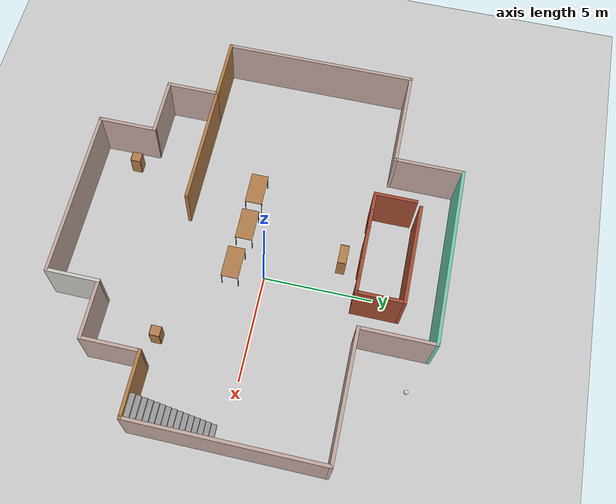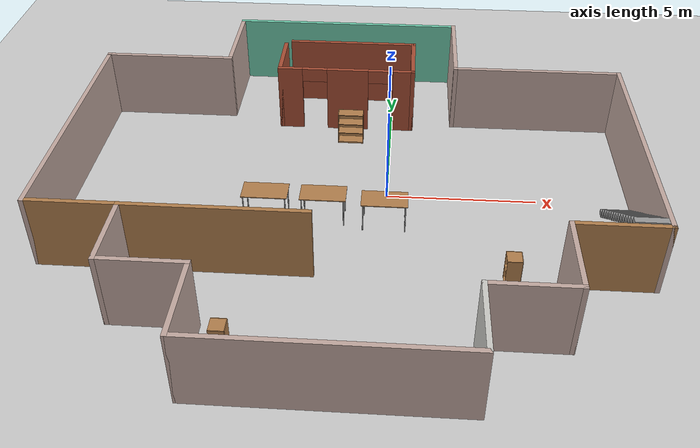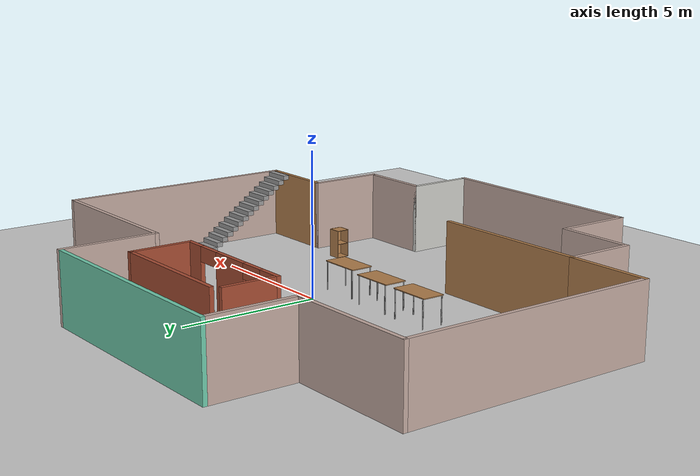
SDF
<sdf version="1.6">
 <world name="default">
  <light name="sun" type="directional">
   <pose>0 0 10 0 -0 0</pose>
   <diffuse>0.8 0.8 0.8 1</diffuse>
   <specular>0.2 0.2 0.2 1</specular>
   <attenuation>
    <range>1000</range>
    <constant>0.9</constant>
    <linear>0.01</linear>
    <quadratic>0.001</quadratic>
   </attenuation>
   <direction>-0.5 0.1 -0.9</direction>
  </light>
  <model name="ground_plane">
   <static>1</static>
   <link name="link">
    <collision name="collision">
     <geometry><plane><normal>0 0 1</normal><size>100 100</size></plane></geometry>
     <surface>
      <contact><collide_bitmask>65535</collide_bitmask></contact>
      <friction><ode><mu>100</mu><mu2>50</mu2></ode></friction>
     </surface>
    </collision>
    <visual name="visual">
     <cast_shadows>0</cast_shadows>
     <geometry><plane><normal>0 0 1</normal><size>100 100</size></plane></geometry>
     <material>
      <script><uri>file://media/materials/scripts/gazebo.material</uri><name>Gazebo/Grey</name></script>
     </material>
    </visual>
   </link>
  </model>
  <gravity>0 0 -9.8</gravity>
  <magnetic_field>6e-06 2.3e-05 -4.2e-05</magnetic_field>
  <atmosphere type="adiabatic"/>
  <physics name="default_physics" default="0" type="ode">
   <max_step_size>0.001</max_step_size>
   <real_time_factor>1</real_time_factor>
   <real_time_update_rate>1000</real_time_update_rate>
  </physics>
  <scene><ambient>0.4 0.4 0.4 1</ambient><background>0.7 0.7 0.7 1</background><shadows>1</shadows></scene>
  <spherical_coordinates>
   <surface_model>EARTH_WGS84</surface_model>
   <latitude_deg>0</latitude_deg>
   <longitude_deg>0</longitude_deg>
   <elevation>0</elevation>
   <heading_deg>0</heading_deg>
  </spherical_coordinates>
  <model name="aakash.world">
   <pose>-1.23426 -0.557609 0 0 -0 0</pose>
   <link name="Stairs_0">
    <visual name="Stairs_0_Visual_0">
     <pose>8.79859 0.013692 0.083333 0 -0 0</pose>
     <geometry><box><size>1 0.233333 0.166667</size></box></geometry>
     <material>
      <script><uri>file://media/materials/scripts/gazebo.material</uri><name>Gazebo/Grey</name></script>
      <ambient>1 1 1 1</ambient>
     </material>
     <meta><layer>0</layer></meta>
    </visual>
    <collision name="Stairs_0_Collision_0">
     <geometry><box><size>1 0.233333 0.166667</size></box></geometry>
     <pose>8.79859 0.013692 0.083333 0 -0 0</pose>
    </collision>
    <visual name="Stairs_0_Visual_1">
     <pose>8.79859 -0.219641 0.25 0 -0 0</pose>
     <geometry><box><size>1 0.233333 0.166667</size></box></geometry>
     <material>
      <script><uri>file://media/materials/scripts/gazebo.material</uri><name>Gazebo/Grey</name></script>
      <ambient>1 1 1 1</ambient>
     </material>
     <meta><layer>0</layer></meta>
    </visual>
    <collision name="Stairs_0_Collision_1">
     <geometry><box><size>1 0.233333 0.166667</size></box></geometry>
     <pose>8.79859 -0.219641 0.25 0 -0 0</pose>
    </collision>
    <visual name="Stairs_0_Visual_2">
     <pose>8.79859 -0.452974 0.416667 0 -0 0</pose>
     <geometry><box><size>1 0.233333 0.166667</size></box></geometry>
     <material>
      <script><uri>file://media/materials/scripts/gazebo.material</uri><name>Gazebo/Grey</name></script>
      <ambient>1 1 1 1</ambient>
     </material>
     <meta><layer>0</layer></meta>
    </visual>
    <collision name="Stairs_0_Collision_2">
     <geometry><box><size>1 0.233333 0.166667</size></box></geometry>
     <pose>8.79859 -0.452974 0.416667 0 -0 0</pose>
    </collision>
    <visual name="Stairs_0_Visual_3">
     <pose>8.79859 -0.686308 0.583333 0 -0 0</pose>
     <geometry><box><size>1 0.233333 0.166667</size></box></geometry>
     <material>
      <script><uri>file://media/materials/scripts/gazebo.material</uri><name>Gazebo/Grey</name></script>
      <ambient>1 1 1 1</ambient>
     </material>
     <meta><layer>0</layer></meta>
    </visual>
    <collision name="Stairs_0_Collision_3">
     <geometry><box><size>1 0.233333 0.166667</size></box></geometry>
     <pose>8.79859 -0.686308 0.583333 0 -0 0</pose>
    </collision>
    <visual name="Stairs_0_Visual_4">
     <pose>8.79859 -0.919641 0.75 0 -0 0</pose>
     <geometry><box><size>1 0.233333 0.166667</size></box></geometry>
     <material>
      <script><uri>file://media/materials/scripts/gazebo.material</uri><name>Gazebo/Grey</name></script>
      <ambient>1 1 1 1</ambient>
     </material>
     <meta><layer>0</layer></meta>
    </visual>
    <collision name="Stairs_0_Collision_4">
     <geometry><box><size>1 0.233333 0.166667</size></box></geometry>
     <pose>8.79859 -0.919641 0.75 0 -0 0</pose>
    </collision>
    <visual name="Stairs_0_Visual_5">
     <pose>8.79859 -1.15297 0.916667 0 -0 0</pose>
     <geometry><box><size>1 0.233333 0.166667</size></box></geometry>
     <material>
      <script><uri>file://media/materials/scripts/gazebo.material</uri><name>Gazebo/Grey</name></script>
      <ambient>1 1 1 1</ambient>
     </material>
     <meta><layer>0</layer></meta>
    </visual>
    <collision name="Stairs_0_Collision_5">
     <geometry><box><size>1 0.233333 0.166667</size></box></geometry>
     <pose>8.79859 -1.15297 0.916667 0 -0 0</pose>
    </collision>
    <visual name="Stairs_0_Visual_6">
     <pose>8.79859 -1.38631 1.08333 0 -0 0</pose>
     <geometry><box><size>1 0.233333 0.166667</size></box></geometry>
     <material>
      <script><uri>file://media/materials/scripts/gazebo.material</uri><name>Gazebo/Grey</name></script>
      <ambient>1 1 1 1</ambient>
     </material>
     <meta><layer>0</layer></meta>
    </visual>
    <collision name="Stairs_0_Collision_6">
     <geometry><box><size>1 0.233333 0.166667</size></box></geometry>
     <pose>8.79859 -1.38631 1.08333 0 -0 0</pose>
    </collision>
    <visual name="Stairs_0_Visual_7">
     <pose>8.79859 -1.61964 1.25 0 -0 0</pose>
     <geometry><box><size>1 0.233333 0.166667</size></box></geometry>
     <material>
      <script><uri>file://media/materials/scripts/gazebo.material</uri><name>Gazebo/Grey</name></script>
      <ambient>1 1 1 1</ambient>
     </material>
     <meta><layer>0</layer></meta>
    </visual>
    <collision name="Stairs_0_Collision_7">
     <geometry><box><size>1 0.233333 0.166667</size></box></geometry>
     <pose>8.79859 -1.61964 1.25 0 -0 0</pose>
    </collision>
    <visual name="Stairs_0_Visual_8">
     <pose>8.79859 -1.85297 1.41667 0 -0 0</pose>
     <geometry><box><size>1 0.233333 0.166667</size></box></geometry>
     <material>
      <script><uri>file://media/materials/scripts/gazebo.material</uri><name>Gazebo/Grey</name></script>
      <ambient>1 1 1 1</ambient>
     </material>
     <meta><layer>0</layer></meta>
    </visual>
    <collision name="Stairs_0_Collision_8">
     <geometry><box><size>1 0.233333 0.166667</size></box></geometry>
     <pose>8.79859 -1.85297 1.41667 0 -0 0</pose>
    </collision>
    <visual name="Stairs_0_Visual_9">
     <pose>8.79859 -2.08631 1.58333 0 -0 0</pose>
     <geometry><box><size>1 0.233333 0.166667</size></box></geometry>
     <material>
      <script><uri>file://media/materials/scripts/gazebo.material</uri><name>Gazebo/Grey</name></script>
      <ambient>1 1 1 1</ambient>
     </material>
     <meta><layer>0</layer></meta>
    </visual>
    <collision name="Stairs_0_Collision_9">
     <geometry><box><size>1 0.233333 0.166667</size></box></geometry>
     <pose>8.79859 -2.08631 1.58333 0 -0 0</pose>
    </collision>
    <visual name="Stairs_0_Visual_10">
     <pose>8.79859 -2.31964 1.75 0 -0 0</pose>
     <geometry><box><size>1 0.233333 0.166667</size></box></geometry>
     <material>
      <script><uri>file://media/materials/scripts/gazebo.material</uri><name>Gazebo/Grey</name></script>
      <ambient>1 1 1 1</ambient>
     </material>
     <meta><layer>0</layer></meta>
    </visual>
    <collision name="Stairs_0_Collision_10">
     <geometry><box><size>1 0.233333 0.166667</size></box></geometry>
     <pose>8.79859 -2.31964 1.75 0 -0 0</pose>
    </collision>
    <visual name="Stairs_0_Visual_11">
     <pose>8.79859 -2.55297 1.91667 0 -0 0</pose>
     <geometry><box><size>1 0.233333 0.166667</size></box></geometry>
     <material>
      <script><uri>file://media/materials/scripts/gazebo.material</uri><name>Gazebo/Grey</name></script>
      <ambient>1 1 1 1</ambient>
     </material>
     <meta><layer>0</layer></meta>
    </visual>
    <collision name="Stairs_0_Collision_11">
     <geometry><box><size>1 0.233333 0.166667</size></box></geometry>
     <pose>8.79859 -2.55297 1.91667 0 -0 0</pose>
    </collision>
    <visual name="Stairs_0_Visual_12">
     <pose>8.79859 -2.78631 2.08333 0 -0 0</pose>
     <geometry><box><size>1 0.233333 0.166667</size></box></geometry>
     <material>
      <script><uri>file://media/materials/scripts/gazebo.material</uri><name>Gazebo/Grey</name></script>
      <ambient>1 1 1 1</ambient>
     </material>
     <meta><layer>0</layer></meta>
    </visual>
    <collision name="Stairs_0_Collision_12">
     <geometry><box><size>1 0.233333 0.166667</size></box></geometry>
     <pose>8.79859 -2.78631 2.08333 0 -0 0</pose>
    </collision>
    <visual name="Stairs_0_Visual_13">
     <pose>8.79859 -3.01964 2.25 0 -0 0</pose>
     <geometry><box><size>1 0.233333 0.166667</size></box></geometry>
     <material>
      <script><uri>file://media/materials/scripts/gazebo.material</uri><name>Gazebo/Grey</name></script>
      <ambient>1 1 1 1</ambient>
     </material>
     <meta><layer>0</layer></meta>
    </visual>
    <collision name="Stairs_0_Collision_13">
     <geometry><box><size>1 0.233333 0.166667</size></box></geometry>
     <pose>8.79859 -3.01964 2.25 0 -0 0</pose>
    </collision>
    <visual name="Stairs_0_Visual_14">
     <pose>8.79859 -3.25298 2.41667 0 -0 0</pose>
     <geometry><box><size>1 0.233333 0.166667</size></box></geometry>
     <material>
      <script><uri>file://media/materials/scripts/gazebo.material</uri><name>Gazebo/Grey</name></script>
      <ambient>1 1 1 1</ambient>
     </material>
     <meta><layer>0</layer></meta>
    </visual>
    <collision name="Stairs_0_Collision_14">
     <geometry><box><size>1 0.233333 0.166667</size></box></geometry>
     <pose>8.79859 -3.25298 2.41667 0 -0 0</pose>
    </collision>
   </link>
   <link name="Wall_0">
    <collision name="Wall_0_Collision">
     <geometry><box><size>9 0.15 2.5</size></box></geometry>
     <pose>0 0 1.25 0 -0 0</pose>
    </collision>
    <visual name="Wall_0_Visual">
     <pose>0 0 1.25 0 -0 0</pose>
     <geometry><box><size>9 0.15 2.5</size></box></geometry>
     <material>
      <script><uri>file://media/materials/scripts/gazebo.material</uri><name>Gazebo/Grey</name></script>
      <ambient>0.760784 0.662745 0.627451 1</ambient>
     </material>
     <meta><layer>0</layer></meta>
    </visual>
    <pose>-9.375 0.925 0 0 0 -1.5708</pose>
   </link>
   <link name="Wall_1">
    <collision name="Wall_1_Collision">
     <geometry><box><size>3 0.15 2.5</size></box></geometry>
     <pose>0 0 1.25 0 -0 0</pose>
    </collision>
    <visual name="Wall_1_Visual">
     <pose>0 0 1.25 0 -0 0</pose>
     <geometry><box><size>3 0.15 2.5</size></box></geometry>
     <material>
      <script><uri>file://media/materials/scripts/gazebo.material</uri><name>Gazebo/Wood</name></script>
      <ambient>1 1 1 1</ambient>
     </material>
     <meta><layer>0</layer></meta>
    </visual>
    <pose>-7.95 -3.5 0 0 -0 0</pose>
   </link>
   <link name="Wall_10">
    <collision name="Wall_10_Collision">
     <geometry><box><size>8.75 0.15 2.5</size></box></geometry>
     <pose>0 0 1.25 0 -0 0</pose>
    </collision>
    <visual name="Wall_10_Visual">
     <pose>0 0 1.25 0 -0 0</pose>
     <geometry><box><size>8.75 0.15 2.5</size></box></geometry>
     <material>
      <script><uri>file://media/materials/scripts/gazebo.material</uri><name>Gazebo/Grey</name></script>
      <ambient>0.760784 0.662745 0.627451 1</ambient>
     </material>
     <meta><layer>0</layer></meta>
    </visual>
    <pose>9.375 0.8 0 0 -0 1.5708</pose>
   </link>
   <link name="Wall_11">
    <collision name="Wall_11_Collision">
     <geometry><box><size>6 0.15 2.5</size></box></geometry>
     <pose>0 0 1.25 0 -0 0</pose>
    </collision>
    <visual name="Wall_11_Visual">
     <pose>0 0 1.25 0 -0 0</pose>
     <geometry><box><size>6 0.15 2.5</size></box></geometry>
     <material>
      <script><uri>file://media/materials/scripts/gazebo.material</uri><name>Gazebo/Grey</name></script>
      <ambient>0.760784 0.662745 0.627451 1</ambient>
     </material>
     <meta><layer>0</layer></meta>
    </visual>
    <pose>6.45 5.1 0 0 -0 3.14159</pose>
   </link>
   <link name="Wall_12">
    <collision name="Wall_12_Collision">
     <geometry><box><size>3.5 0.15 2.5</size></box></geometry>
     <pose>0 0 1.25 0 -0 0</pose>
    </collision>
    <visual name="Wall_12_Visual">
     <pose>0 0 1.25 0 -0 0</pose>
     <geometry><box><size>3.5 0.15 2.5</size></box></geometry>
     <material>
      <script><uri>file://media/materials/scripts/gazebo.material</uri><name>Gazebo/Grey</name></script>
      <ambient>0.760784 0.662745 0.627451 1</ambient>
     </material>
     <meta><layer>0</layer></meta>
    </visual>
    <pose>3.525 6.775 0 0 -0 1.5708</pose>
   </link>
   <link name="Wall_13">
    <collision name="Wall_13_Collision">
     <geometry><box><size>8.5 0.15 2.5</size></box></geometry>
     <pose>0 0 1.25 0 -0 0</pose>
    </collision>
    <visual name="Wall_13_Visual">
     <pose>0 0 1.25 0 -0 0</pose>
     <geometry><box><size>8.5 0.15 2.5</size></box></geometry>
     <material>
      <script><uri>file://media/materials/scripts/gazebo.material</uri><name>Gazebo/Grey</name></script>
      <ambient>0.435294 0.796078 0.67451 1</ambient>
     </material>
     <meta><layer>0</layer></meta>
    </visual>
    <pose>-0.65 8.45 0 0 -0 3.14159</pose>
   </link>
   <link name="Wall_14">
    <collision name="Wall_14_Collision">
     <geometry><box><size>3.25 0.15 2.5</size></box></geometry>
     <pose>0 0 1.25 0 -0 0</pose>
    </collision>
    <visual name="Wall_14_Visual">
     <pose>0 0 1.25 0 -0 0</pose>
     <geometry><box><size>3.25 0.15 2.5</size></box></geometry>
     <material>
      <script><uri>file://media/materials/scripts/gazebo.material</uri><name>Gazebo/Grey</name></script>
      <ambient>0.760784 0.662745 0.627451 1</ambient>
     </material>
     <meta><layer>0</layer></meta>
    </visual>
    <pose>-4.825 6.9 0 0 0 -1.5708</pose>
   </link>
   <link name="Wall_15">
    <collision name="Wall_15_Collision">
     <geometry><box><size>4.7 0.15 2.5</size></box></geometry>
     <pose>0 0 1.25 0 -0 0</pose>
    </collision>
    <visual name="Wall_15_Visual">
     <pose>0 0 1.25 0 -0 0</pose>
     <geometry><box><size>4.7 0.15 2.5</size></box></geometry>
     <material>
      <script><uri>file://media/materials/scripts/gazebo.material</uri><name>Gazebo/Grey</name></script>
      <ambient>0.760784 0.662745 0.627451 1</ambient>
     </material>
     <meta><layer>0</layer></meta>
    </visual>
    <pose>-7.1 5.35 0 0 -0 3.14159</pose>
   </link>
   <link name="Wall_17">
    <collision name="Wall_17_Collision">
     <geometry><box><size>5.75 0.15 2.5</size></box></geometry>
     <pose>0 0 1.25 0 -0 0</pose>
    </collision>
    <visual name="Wall_17_Visual">
     <pose>0 0 1.25 0 -0 0</pose>
     <geometry><box><size>5.75 0.15 2.5</size></box></geometry>
     <material>
      <script><uri>file://media/materials/scripts/gazebo.material</uri><name>Gazebo/Wood</name></script>
      <ambient>1 1 1 1</ambient>
     </material>
     <meta><layer>0</layer></meta>
    </visual>
    <pose>-3.725 -3.5 0 0 -0 0</pose>
   </link>
   <link name="Wall_19">
    <collision name="Wall_19_Collision">
     <geometry><box><size>2 0.15 2.5</size></box></geometry>
     <pose>0 0 1.25 0 -0 0</pose>
    </collision>
    <visual name="Wall_19_Visual">
     <pose>0 0 1.25 0 -0 0</pose>
     <geometry><box><size>2 0.15 2.5</size></box></geometry>
     <material>
      <script><uri>file://media/materials/scripts/gazebo.material</uri><name>Gazebo/Bricks</name></script>
      <ambient>1 1 1 1</ambient>
     </material>
     <meta><layer>0</layer></meta>
    </visual>
    <pose>-2.87632 5.66318 0 0 0 -1.5708</pose>
   </link>
   <link name="Wall_2">
    <collision name="Wall_2_Collision">
     <geometry><box><size>2.5 0.15 2.5</size></box></geometry>
     <pose>0 0 1.25 0 -0 0</pose>
    </collision>
    <visual name="Wall_2_Visual">
     <pose>0 0 1.25 0 -0 0</pose>
     <geometry><box><size>2.5 0.15 2.5</size></box></geometry>
     <material>
      <script><uri>file://media/materials/scripts/gazebo.material</uri><name>Gazebo/Grey</name></script>
      <ambient>0.760784 0.662745 0.627451 1</ambient>
     </material>
     <meta><layer>0</layer></meta>
    </visual>
    <pose>-6.525 -4.675 0 0 0 -1.5708</pose>
   </link>
   <link name="Wall_20">
    <pose>-0.451323 4.73818 0 0 -0 0</pose>
    <visual name="Wall_20_Visual_0">
     <pose>-2.05069 0 1.25 0 -0 0</pose>
     <geometry><box><size>0.898627 0.15 2.5</size></box></geometry>
     <material>
      <script><uri>file://media/materials/scripts/gazebo.material</uri><name>Gazebo/Bricks</name></script>
      <ambient>1 1 1 1</ambient>
     </material>
     <meta><layer>0</layer></meta>
    </visual>
    <collision name="Wall_20_Collision_0">
     <geometry><box><size>0.898627 0.15 2.5</size></box></geometry>
     <pose>-2.05069 0 1.25 0 -0 0</pose>
    </collision>
    <visual name="Wall_20_Visual_1">
     <pose>0.051497 0 1.25 0 -0 0</pose>
     <geometry><box><size>1.50574 0.15 2.5</size></box></geometry>
     <material>
      <script><uri>file://media/materials/scripts/gazebo.material</uri><name>Gazebo/Bricks</name></script>
      <ambient>1 1 1 1</ambient>
     </material>
     <meta><layer>0</layer></meta>
    </visual>
    <collision name="Wall_20_Collision_1">
     <geometry><box><size>1.50574 0.15 2.5</size></box></geometry>
     <pose>0.051497 0 1.25 0 -0 0</pose>
    </collision>
    <visual name="Wall_20_Visual_2">
     <pose>2.10218 0 1.25 0 -0 0</pose>
     <geometry><box><size>0.795633 0.15 2.5</size></box></geometry>
     <material>
      <script><uri>file://media/materials/scripts/gazebo.material</uri><name>Gazebo/Bricks</name></script>
      <ambient>1 1 1 1</ambient>
     </material>
     <meta><layer>0</layer></meta>
    </visual>
    <collision name="Wall_20_Collision_2">
     <geometry><box><size>0.795633 0.15 2.5</size></box></geometry>
     <pose>2.10218 0 1.25 0 -0 0</pose>
    </collision>
    <visual name="Wall_20_Visual_3">
     <pose>-1.15137 0 2.25 0 -0 0</pose>
     <geometry><box><size>0.9 0.15 0.5</size></box></geometry>
     <material>
      <script><uri>file://media/materials/scripts/gazebo.material</uri><name>Gazebo/Bricks</name></script>
      <ambient>1 1 1 1</ambient>
     </material>
     <meta><layer>0</layer></meta>
    </visual>
    <collision name="Wall_20_Collision_3">
     <geometry><box><size>0.9 0.15 0.5</size></box></geometry>
     <pose>-1.15137 0 2.25 0 -0 0</pose>
    </collision>
    <visual name="Wall_20_Visual_4">
     <pose>1.25437 0 2.25 0 -0 0</pose>
     <geometry><box><size>0.9 0.15 0.5</size></box></geometry>
     <material>
      <script><uri>file://media/materials/scripts/gazebo.material</uri><name>Gazebo/Bricks</name></script>
      <ambient>1 1 1 1</ambient>
     </material>
     <meta><layer>0</layer></meta>
    </visual>
    <collision name="Wall_20_Collision_4">
     <geometry><box><size>0.9 0.15 0.5</size></box></geometry>
     <pose>1.25437 0 2.25 0 -0 0</pose>
    </collision>
   </link>
   <link name="Wall_21">
    <collision name="Wall_21_Collision">
     <geometry><box><size>2.25 0.15 2.5</size></box></geometry>
     <pose>0 0 1.25 0 -0 0</pose>
    </collision>
    <visual name="Wall_21_Visual">
     <pose>0 0 1.25 0 -0 0</pose>
     <geometry><box><size>2.25 0.15 2.5</size></box></geometry>
     <material>
      <script><uri>file://media/materials/scripts/gazebo.material</uri><name>Gazebo/Bricks</name></script>
      <ambient>1 1 1 1</ambient>
     </material>
     <meta><layer>0</layer></meta>
    </visual>
    <pose>1.97368 5.78818 0 0 -0 1.5708</pose>
   </link>
   <link name="Wall_22">
    <collision name="Wall_22_Collision">
     <geometry><box><size>4.75 0.15 2.5</size></box></geometry>
     <pose>0 0 1.25 0 -0 0</pose>
    </collision>
    <visual name="Wall_22_Visual">
     <pose>0 0 1.25 0 -0 0</pose>
     <geometry><box><size>4.75 0.15 2.5</size></box></geometry>
     <material>
      <script><uri>file://media/materials/scripts/gazebo.material</uri><name>Gazebo/Bricks</name></script>
      <ambient>1 1 1 1</ambient>
     </material>
     <meta><layer>0</layer></meta>
    </visual>
    <pose>-0.326323 6.83818 0 0 -0 3.14159</pose>
   </link>
   <link name="Wall_3">
    <collision name="Wall_3_Collision">
     <geometry><box><size>2.75 0.15 2.5</size></box></geometry>
     <pose>0 0 1.25 0 -0 0</pose>
    </collision>
    <visual name="Wall_3_Visual">
     <pose>0 0 1.25 0 -0 0</pose>
     <geometry><box><size>2.75 0.15 2.5</size></box></geometry>
     <material>
      <script><uri>file://media/materials/scripts/gazebo.material</uri><name>Gazebo/Grey</name></script>
      <ambient>0.760784 0.662745 0.627451 1</ambient>
     </material>
     <meta><layer>0</layer></meta>
    </visual>
    <pose>-5.225 -5.85 0 0 -0 0</pose>
   </link>
   <link name="Wall_4">
    <collision name="Wall_4_Collision">
     <geometry><box><size>2.75 0.15 2.5</size></box></geometry>
     <pose>0 0 1.25 0 -0 0</pose>
    </collision>
    <visual name="Wall_4_Visual">
     <pose>0 0 1.25 0 -0 0</pose>
     <geometry><box><size>2.75 0.15 2.5</size></box></geometry>
     <material>
      <script><uri>file://media/materials/scripts/gazebo.material</uri><name>Gazebo/Grey</name></script>
      <ambient>0.760784 0.662745 0.627451 1</ambient>
     </material>
     <meta><layer>0</layer></meta>
    </visual>
    <pose>-3.925 -7.15 0 0 0 -1.5708</pose>
   </link>
   <link name="Wall_5">
    <collision name="Wall_5_Collision">
     <geometry><box><size>8 0.15 2.5</size></box></geometry>
     <pose>0 0 1.25 0 -0 0</pose>
    </collision>
    <visual name="Wall_5_Visual">
     <pose>0 0 1.25 0 -0 0</pose>
     <geometry><box><size>8 0.15 2.5</size></box></geometry>
     <material>
      <script><uri>file://media/materials/scripts/gazebo.material</uri><name>Gazebo/Grey</name></script>
      <ambient>0.760784 0.662745 0.627451 1</ambient>
     </material>
     <meta><layer>0</layer></meta>
    </visual>
    <pose>0 -8.45 0 0 -0 0</pose>
   </link>
   <link name="Wall_6">
    <collision name="Wall_6_Collision">
     <geometry><box><size>2.5 0.15 2.5</size></box></geometry>
     <pose>0 0 1.25 0 -0 0</pose>
    </collision>
    <visual name="Wall_6_Visual">
     <pose>0 0 1.25 0 -0 0</pose>
     <geometry><box><size>2.5 0.15 2.5</size></box></geometry>
     <material>
      <script><uri>file://media/materials/scripts/gazebo.material</uri><name>Gazebo/CeilingTiled</name></script>
      <ambient>1 1 1 1</ambient>
     </material>
     <meta><layer>0</layer></meta>
    </visual>
    <pose>3.925 -7.275 0 0 -0 1.5708</pose>
   </link>
   <link name="Wall_7">
    <collision name="Wall_7_Collision">
     <geometry><box><size>2.75 0.15 2.5</size></box></geometry>
     <pose>0 0 1.25 0 -0 0</pose>
    </collision>
    <visual name="Wall_7_Visual">
     <pose>0 0 1.25 0 -0 0</pose>
     <geometry><box><size>2.75 0.15 2.5</size></box></geometry>
     <material>
      <script><uri>file://media/materials/scripts/gazebo.material</uri><name>Gazebo/Grey</name></script>
      <ambient>0.760784 0.662745 0.627451 1</ambient>
     </material>
     <meta><layer>0</layer></meta>
    </visual>
    <pose>5.225 -6.1 0 0 -0 0</pose>
   </link>
   <link name="Wall_8">
    <collision name="Wall_8_Collision">
     <geometry><box><size>2.75 0.15 2.5</size></box></geometry>
     <pose>0 0 1.25 0 -0 0</pose>
    </collision>
    <visual name="Wall_8_Visual">
     <pose>0 0 1.25 0 -0 0</pose>
     <geometry><box><size>2.75 0.15 2.5</size></box></geometry>
     <material>
      <script><uri>file://media/materials/scripts/gazebo.material</uri><name>Gazebo/Grey</name></script>
      <ambient>0.760784 0.662745 0.627451 1</ambient>
     </material>
     <meta><layer>0</layer></meta>
    </visual>
    <pose>6.525 -4.8 0 0 -0 1.5708</pose>
   </link>
   <link name="Wall_9">
    <collision name="Wall_9_Collision">
     <geometry><box><size>3 0.15 2.5</size></box></geometry>
     <pose>0 0 1.25 0 -0 0</pose>
    </collision>
    <visual name="Wall_9_Visual">
     <pose>0 0 1.25 0 -0 0</pose>
     <geometry><box><size>3 0.15 2.5</size></box></geometry>
     <material>
      <script><uri>file://media/materials/scripts/gazebo.material</uri><name>Gazebo/Wood</name></script>
      <ambient>1 1 1 1</ambient>
     </material>
     <meta><layer>0</layer></meta>
    </visual>
    <pose>7.95 -3.5 0 0 -0 0</pose>
   </link>
   <static>1</static>
  </model>
  <model name="table">
   <static>1</static>
   <link name="link">
    <collision name="surface">
     <pose>0 0 1 0 -0 0</pose>
     <geometry><box><size>1.5 0.8 0.03</size></box></geometry>
     <surface><friction><ode><mu>0.6</mu><mu2>0.6</mu2></ode></friction></surface>
    </collision>
    <visual name="visual1">
     <pose>0 0 1 0 -0 0</pose>
     <geometry><box><size>1.5 0.8 0.03</size></box></geometry>
     <material>
      <script><uri>file://media/materials/scripts/gazebo.material</uri><name>Gazebo/Wood</name></script>
     </material>
    </visual>
    <collision name="front_left_leg">
     <pose>0.68 0.38 0.5 0 -0 0</pose>
     <geometry><cylinder><radius>0.02</radius><length>1</length></cylinder></geometry>
    </collision>
    <visual name="front_left_leg">
     <pose>0.68 0.38 0.5 0 -0 0</pose>
     <geometry><cylinder><radius>0.02</radius><length>1</length></cylinder></geometry>
     <material>
      <script><uri>file://media/materials/scripts/gazebo.material</uri><name>Gazebo/Grey</name></script>
     </material>
    </visual>
    <collision name="front_right_leg">
     <pose>0.68 -0.38 0.5 0 -0 0</pose>
     <geometry><cylinder><radius>0.02</radius><length>1</length></cylinder></geometry>
    </collision>
    <visual name="front_right_leg">
     <pose>0.68 -0.38 0.5 0 -0 0</pose>
     <geometry><cylinder><radius>0.02</radius><length>1</length></cylinder></geometry>
     <material>
      <script><uri>file://media/materials/scripts/gazebo.material</uri><name>Gazebo/Grey</name></script>
     </material>
    </visual>
    <collision name="back_right_leg">
     <pose>-0.68 -0.38 0.5 0 -0 0</pose>
     <geometry><cylinder><radius>0.02</radius><length>1</length></cylinder></geometry>
    </collision>
    <visual name="back_right_leg">
     <pose>-0.68 -0.38 0.5 0 -0 0</pose>
     <geometry><cylinder><radius>0.02</radius><length>1</length></cylinder></geometry>
     <material>
      <script><uri>file://media/materials/scripts/gazebo.material</uri><name>Gazebo/Grey</name></script>
     </material>
    </visual>
    <collision name="back_left_leg">
     <pose>-0.68 0.38 0.5 0 -0 0</pose>
     <geometry><cylinder><radius>0.02</radius><length>1</length></cylinder></geometry>
    </collision>
    <visual name="back_left_leg">
     <pose>-0.68 0.38 0.5 0 -0 0</pose>
     <geometry><cylinder><radius>0.02</radius><length>1</length></cylinder></geometry>
     <material>
      <script><uri>file://media/materials/scripts/gazebo.material</uri><name>Gazebo/Grey</name></script>
     </material>
    </visual>
   </link>
   <pose>-3.93684 -1.243 0 0 -0 0</pose>
  </model>
  <model name="table_0">
   <static>1</static>
   <link name="link">
    <collision name="surface">
     <pose>0 0 1 0 -0 0</pose>
     <geometry><box><size>1.5 0.8 0.03</size></box></geometry>
     <surface><friction><ode><mu>0.6</mu><mu2>0.6</mu2></ode></friction></surface>
    </collision>
    <visual name="visual1">
     <pose>0 0 1 0 -0 0</pose>
     <geometry><box><size>1.5 0.8 0.03</size></box></geometry>
     <material>
      <script><uri>file://media/materials/scripts/gazebo.material</uri><name>Gazebo/Wood</name></script>
     </material>
    </visual>
    <collision name="front_left_leg">
     <pose>0.68 0.38 0.5 0 -0 0</pose>
     <geometry><cylinder><radius>0.02</radius><length>1</length></cylinder></geometry>
    </collision>
    <visual name="front_left_leg">
     <pose>0.68 0.38 0.5 0 -0 0</pose>
     <geometry><cylinder><radius>0.02</radius><length>1</length></cylinder></geometry>
     <material>
      <script><uri>file://media/materials/scripts/gazebo.material</uri><name>Gazebo/Grey</name></script>
     </material>
    </visual>
    <collision name="front_right_leg">
     <pose>0.68 -0.38 0.5 0 -0 0</pose>
     <geometry><cylinder><radius>0.02</radius><length>1</length></cylinder></geometry>
    </collision>
    <visual name="front_right_leg">
     <pose>0.68 -0.38 0.5 0 -0 0</pose>
     <geometry><cylinder><radius>0.02</radius><length>1</length></cylinder></geometry>
     <material>
      <script><uri>file://media/materials/scripts/gazebo.material</uri><name>Gazebo/Grey</name></script>
     </material>
    </visual>
    <collision name="back_right_leg">
     <pose>-0.68 -0.38 0.5 0 -0 0</pose>
     <geometry><cylinder><radius>0.02</radius><length>1</length></cylinder></geometry>
    </collision>
    <visual name="back_right_leg">
     <pose>-0.68 -0.38 0.5 0 -0 0</pose>
     <geometry><cylinder><radius>0.02</radius><length>1</length></cylinder></geometry>
     <material>
      <script><uri>file://media/materials/scripts/gazebo.material</uri><name>Gazebo/Grey</name></script>
     </material>
    </visual>
    <collision name="back_left_leg">
     <pose>-0.68 0.38 0.5 0 -0 0</pose>
     <geometry><cylinder><radius>0.02</radius><length>1</length></cylinder></geometry>
    </collision>
    <visual name="back_left_leg">
     <pose>-0.68 0.38 0.5 0 -0 0</pose>
     <geometry><cylinder><radius>0.02</radius><length>1</length></cylinder></geometry>
     <material>
      <script><uri>file://media/materials/scripts/gazebo.material</uri><name>Gazebo/Grey</name></script>
     </material>
    </visual>
   </link>
   <pose>-2.04237 -1.25887 0 0 -0 0</pose>
  </model>
  <model name="table_1">
   <static>1</static>
   <link name="link">
    <collision name="surface">
     <pose>0 0 1 0 -0 0</pose>
     <geometry><box><size>1.5 0.8 0.03</size></box></geometry>
     <surface><friction><ode><mu>0.6</mu><mu2>0.6</mu2></ode></friction></surface>
    </collision>
    <visual name="visual1">
     <pose>0 0 1 0 -0 0</pose>
     <geometry><box><size>1.5 0.8 0.03</size></box></geometry>
     <material>
      <script><uri>file://media/materials/scripts/gazebo.material</uri><name>Gazebo/Wood</name></script>
     </material>
    </visual>
    <collision name="front_left_leg">
     <pose>0.68 0.38 0.5 0 -0 0</pose>
     <geometry><cylinder><radius>0.02</radius><length>1</length></cylinder></geometry>
    </collision>
    <visual name="front_left_leg">
     <pose>0.68 0.38 0.5 0 -0 0</pose>
     <geometry><cylinder><radius>0.02</radius><length>1</length></cylinder></geometry>
     <material>
      <script><uri>file://media/materials/scripts/gazebo.material</uri><name>Gazebo/Grey</name></script>
     </material>
    </visual>
    <collision name="front_right_leg">
     <pose>0.68 -0.38 0.5 0 -0 0</pose>
     <geometry><cylinder><radius>0.02</radius><length>1</length></cylinder></geometry>
    </collision>
    <visual name="front_right_leg">
     <pose>0.68 -0.38 0.5 0 -0 0</pose>
     <geometry><cylinder><radius>0.02</radius><length>1</length></cylinder></geometry>
     <material>
      <script><uri>file://media/materials/scripts/gazebo.material</uri><name>Gazebo/Grey</name></script>
     </material>
    </visual>
    <collision name="back_right_leg">
     <pose>-0.68 -0.38 0.5 0 -0 0</pose>
     <geometry><cylinder><radius>0.02</radius><length>1</length></cylinder></geometry>
    </collision>
    <visual name="back_right_leg">
     <pose>-0.68 -0.38 0.5 0 -0 0</pose>
     <geometry><cylinder><radius>0.02</radius><length>1</length></cylinder></geometry>
     <material>
      <script><uri>file://media/materials/scripts/gazebo.material</uri><name>Gazebo/Grey</name></script>
     </material>
    </visual>
    <collision name="back_left_leg">
     <pose>-0.68 0.38 0.5 0 -0 0</pose>
     <geometry><cylinder><radius>0.02</radius><length>1</length></cylinder></geometry>
    </collision>
    <visual name="back_left_leg">
     <pose>-0.68 0.38 0.5 0 -0 0</pose>
     <geometry><cylinder><radius>0.02</radius><length>1</length></cylinder></geometry>
     <material>
      <script><uri>file://media/materials/scripts/gazebo.material</uri><name>Gazebo/Grey</name></script>
     </material>
    </visual>
   </link>
   <pose>-0.054119 -1.441 0 0 -0 0</pose>
  </model>
  <model name="bookshelf">
   <static>1</static>
   <link name="link">
    <inertial><mass>1</mass></inertial>
    <collision name="back">
     <pose>0 0.005 0.6 0 -0 0</pose>
     <geometry><box><size>0.9 0.01 1.2</size></box></geometry>
    </collision>
    <visual name="visual1">
     <pose>0 0.005 0.6 0 -0 0</pose>
     <geometry><box><size>0.9 0.01 1.2</size></box></geometry>
     <material>
      <script><uri>file://media/materials/scripts/gazebo.material</uri><name>Gazebo/Wood</name></script>
     </material>
    </visual>
    <collision name="left_side">
     <pose>0.45 -0.195 0.6 0 -0 0</pose>
     <geometry><box><size>0.02 0.4 1.2</size></box></geometry>
    </collision>
    <visual name="visual2">
     <pose>0.45 -0.195 0.6 0 -0 0</pose>
     <geometry><box><size>0.02 0.4 1.2</size></box></geometry>
     <material>
      <script><uri>file://media/materials/scripts/gazebo.material</uri><name>Gazebo/Wood</name></script>
     </material>
    </visual>
    <collision name="right_side">
     <pose>-0.45 -0.195 0.6 0 -0 0</pose>
     <geometry><box><size>0.02 0.4 1.2</size></box></geometry>
    </collision>
    <visual name="visual3">
     <pose>-0.45 -0.195 0.6 0 -0 0</pose>
     <geometry><box><size>0.02 0.4 1.2</size></box></geometry>
     <material>
      <script><uri>file://media/materials/scripts/gazebo.material</uri><name>Gazebo/Wood</name></script>
     </material>
    </visual>
    <collision name="bottom">
     <pose>0 -0.195 0.03 0 -0 0</pose>
     <geometry><box><size>0.88 0.4 0.06</size></box></geometry>
    </collision>
    <visual name="visual4">
     <pose>0 -0.195 0.03 0 -0 0</pose>
     <geometry><box><size>0.88 0.4 0.06</size></box></geometry>
     <material>
      <script><uri>file://media/materials/scripts/gazebo.material</uri><name>Gazebo/Wood</name></script>
     </material>
    </visual>
    <collision name="top">
     <pose>0 -0.195 1.19 0 -0 0</pose>
     <geometry><box><size>0.88 0.4 0.02</size></box></geometry>
    </collision>
    <visual name="visual5">
     <pose>0 -0.195 1.19 0 -0 0</pose>
     <geometry><box><size>0.88 0.4 0.02</size></box></geometry>
     <material>
      <script><uri>file://media/materials/scripts/gazebo.material</uri><name>Gazebo/Wood</name></script>
     </material>
    </visual>
    <collision name="low_shelf">
     <pose>0 -0.195 0.43 0 -0 0</pose>
     <geometry><box><size>0.88 0.4 0.02</size></box></geometry>
    </collision>
    <visual name="visual6">
     <pose>0 -0.195 0.43 0 -0 0</pose>
     <geometry><box><size>0.88 0.4 0.02</size></box></geometry>
     <material>
      <script><uri>file://media/materials/scripts/gazebo.material</uri><name>Gazebo/Wood</name></script>
     </material>
    </visual>
    <collision name="high_shelf">
     <pose>0 -0.195 0.8 0 -0 0</pose>
     <geometry><box><size>0.88 0.4 0.02</size></box></geometry>
    </collision>
    <visual name="visual7">
     <pose>0 -0.195 0.8 0 -0 0</pose>
     <geometry><box><size>0.88 0.4 0.02</size></box></geometry>
     <material>
      <script><uri>file://media/materials/scripts/gazebo.material</uri><name>Gazebo/Wood</name></script>
     </material>
    </visual>
   </link>
   <pose>-1.45623 3.52786 0 0 -0 0</pose>
  </model>
  <model name="cabinet">
   <static>1</static>
   <link name="cabinet_bottom_plate">
    <inertial>
     <pose>0 0 -1 0 -0 0</pose>
     <inertia><ixx>2.05</ixx><ixy>0</ixy><ixz>0</ixz><iyy>2.05</iyy><iyz>0</iyz><izz>2.05</izz></inertia>
     <mass>25</mass>
    </inertial>
    <collision name="cabinet_bottom_plate_geom">
     <pose>0 0 0.01 0 -0 0</pose>
     <geometry><box><size>0.45 0.45 0.02</size></box></geometry>
    </collision>
    <visual name="cabinet_bottom_plate_geom_visual">
     <pose>0 0 0.01 0 -0 0</pose>
     <geometry><box><size>0.45 0.45 0.02</size></box></geometry>
     <material>
      <script><uri>file://media/materials/scripts/gazebo.material</uri><name>Gazebo/Wood</name></script>
     </material>
    </visual>
    <collision name="cabinet_bottom_plate_geom_cabinet_back_plate">
     <pose>0.235 0 0.51 0 -0 0</pose>
     <geometry><box><size>0.02 0.45 1.02</size></box></geometry>
    </collision>
    <visual name="cabinet_bottom_plate_geom_cabinet_back_plate_visual">
     <pose>0.235 0 0.51 0 -0 0</pose>
     <geometry><box><size>0.02 0.45 1.02</size></box></geometry>
     <material>
      <script><uri>file://media/materials/scripts/gazebo.material</uri><name>Gazebo/Wood</name></script>
     </material>
    </visual>
    <collision name="cabinet_bottom_plate_geom_cabinet_left_plate">
     <pose>0 0.235 0.51 0 -0 0</pose>
     <geometry><box><size>0.45 0.02 1.02</size></box></geometry>
    </collision>
    <visual name="cabinet_bottom_plate_geom_cabinet_left_plate_visual">
     <pose>0 0.235 0.51 0 -0 0</pose>
     <geometry><box><size>0.45 0.02 1.02</size></box></geometry>
     <material>
      <script><uri>file://media/materials/scripts/gazebo.material</uri><name>Gazebo/Wood</name></script>
     </material>
    </visual>
    <collision name="cabinet_bottom_plate_geom_cabinet_middle_plate">
     <pose>0 0 0.51 0 -0 0</pose>
     <geometry><box><size>0.45 0.45 0.02</size></box></geometry>
    </collision>
    <visual name="cabinet_bottom_plate_geom_cabinet_middle_plate_visual">
     <pose>0 0 0.51 0 -0 0</pose>
     <geometry><box><size>0.45 0.45 0.02</size></box></geometry>
     <material>
      <script><uri>file://media/materials/scripts/gazebo.material</uri><name>Gazebo/Wood</name></script>
     </material>
    </visual>
    <collision name="cabinet_bottom_plate_geom_cabinet_right_plate">
     <pose>0 -0.235 0.51 0 -0 0</pose>
     <geometry><box><size>0.45 0.02 1.02</size></box></geometry>
    </collision>
    <visual name="cabinet_bottom_plate_geom_cabinet_right_plate_visual">
     <pose>0 -0.235 0.51 0 -0 0</pose>
     <geometry><box><size>0.45 0.02 1.02</size></box></geometry>
     <material>
      <script><uri>file://media/materials/scripts/gazebo.material</uri><name>Gazebo/Wood</name></script>
     </material>
    </visual>
    <collision name="cabinet_bottom_plate_geom_cabinet_top_plate">
     <pose>0 0 1.01 0 -0 0</pose>
     <geometry><box><size>0.45 0.45 0.02</size></box></geometry>
    </collision>
    <visual name="cabinet_bottom_plate_geom_cabinet_top_plate_visual">
     <pose>0 0 1.01 0 -0 0</pose>
     <geometry><box><size>0.45 0.45 0.02</size></box></geometry>
     <material>
      <script><uri>file://media/materials/scripts/gazebo.material</uri><name>Gazebo/Wood</name></script>
     </material>
    </visual>
   </link>
   <pose>-4.35088 -7.22316 0 0 -0 0</pose>
  </model>
  <model name="cabinet_0">
   <static>1</static>
   <link name="cabinet_bottom_plate">
    <inertial>
     <pose>0 0 -1 0 -0 0</pose>
     <inertia><ixx>2.05</ixx><ixy>0</ixy><ixz>0</ixz><iyy>2.05</iyy><iyz>0</iyz><izz>2.05</izz></inertia>
     <mass>25</mass>
    </inertial>
    <collision name="cabinet_bottom_plate_geom">
     <pose>0 0 0.01 0 -0 0</pose>
     <geometry><box><size>0.45 0.45 0.02</size></box></geometry>
    </collision>
    <visual name="cabinet_bottom_plate_geom_visual">
     <pose>0 0 0.01 0 -0 0</pose>
     <geometry><box><size>0.45 0.45 0.02</size></box></geometry>
     <material>
      <script><uri>file://media/materials/scripts/gazebo.material</uri><name>Gazebo/Wood</name></script>
     </material>
    </visual>
    <collision name="cabinet_bottom_plate_geom_cabinet_back_plate">
     <pose>0.235 0 0.51 0 -0 0</pose>
     <geometry><box><size>0.02 0.45 1.02</size></box></geometry>
    </collision>
    <visual name="cabinet_bottom_plate_geom_cabinet_back_plate_visual">
     <pose>0.235 0 0.51 0 -0 0</pose>
     <geometry><box><size>0.02 0.45 1.02</size></box></geometry>
     <material>
      <script><uri>file://media/materials/scripts/gazebo.material</uri><name>Gazebo/Wood</name></script>
     </material>
    </visual>
    <collision name="cabinet_bottom_plate_geom_cabinet_left_plate">
     <pose>0 0.235 0.51 0 -0 0</pose>
     <geometry><box><size>0.45 0.02 1.02</size></box></geometry>
    </collision>
    <visual name="cabinet_bottom_plate_geom_cabinet_left_plate_visual">
     <pose>0 0.235 0.51 0 -0 0</pose>
     <geometry><box><size>0.45 0.02 1.02</size></box></geometry>
     <material>
      <script><uri>file://media/materials/scripts/gazebo.material</uri><name>Gazebo/Wood</name></script>
     </material>
    </visual>
    <collision name="cabinet_bottom_plate_geom_cabinet_middle_plate">
     <pose>0 0 0.51 0 -0 0</pose>
     <geometry><box><size>0.45 0.45 0.02</size></box></geometry>
    </collision>
    <visual name="cabinet_bottom_plate_geom_cabinet_middle_plate_visual">
     <pose>0 0 0.51 0 -0 0</pose>
     <geometry><box><size>0.45 0.45 0.02</size></box></geometry>
     <material>
      <script><uri>file://media/materials/scripts/gazebo.material</uri><name>Gazebo/Wood</name></script>
     </material>
    </visual>
    <collision name="cabinet_bottom_plate_geom_cabinet_right_plate">
     <pose>0 -0.235 0.51 0 -0 0</pose>
     <geometry><box><size>0.45 0.02 1.02</size></box></geometry>
    </collision>
    <visual name="cabinet_bottom_plate_geom_cabinet_right_plate_visual">
     <pose>0 -0.235 0.51 0 -0 0</pose>
     <geometry><box><size>0.45 0.02 1.02</size></box></geometry>
     <material>
      <script><uri>file://media/materials/scripts/gazebo.material</uri><name>Gazebo/Wood</name></script>
     </material>
    </visual>
    <collision name="cabinet_bottom_plate_geom_cabinet_top_plate">
     <pose>0 0 1.01 0 -0 0</pose>
     <geometry><box><size>0.45 0.45 0.02</size></box></geometry>
    </collision>
    <visual name="cabinet_bottom_plate_geom_cabinet_top_plate_visual">
     <pose>0 0 1.01 0 -0 0</pose>
     <geometry><box><size>0.45 0.45 0.02</size></box></geometry>
     <material>
      <script><uri>file://media/materials/scripts/gazebo.material</uri><name>Gazebo/Wood</name></script>
     </material>
    </visual>
   </link>
   <pose>3.85947 -3.9601 0 0 -0 0</pose>
  </model>
  <model name="my_ball">
   <link name="link_0">
    <inertial>
     <mass>1</mass>
     <inertia><ixx>0.1</ixx><ixy>0</ixy><ixz>0</ixz><iyy>0.1</iyy><iyz>0</iyz><izz>0.1</izz></inertia>
    </inertial>
    <visual name="visual">
     <geometry><sphere><radius>0.1</radius></sphere></geometry>
     <material>
      <lighting>1</lighting>
      <script><uri>file://media/materials/scripts/gazebo.material</uri><name>Gazebo/White</name></script>
      <shader type="pixel"><normal_map>__default__</normal_map></shader>
      <ambient>1 1 1 1</ambient>
      <diffuse>1 1 1 1</diffuse>
      <specular>1 1 1 1</specular>
      <emissive>1 1 1 1</emissive>
     </material>
    </visual>
    <collision name="collision">
     <geometry><sphere><radius>0.1</radius></sphere></geometry>
     <surface>
      <friction>
       <ode><mu>1</mu><mu2>1</mu2><fdir1>0 0 0</fdir1><slip1>0</slip1><slip2>0</slip2></ode>
       <torsional>
        <coefficient>1</coefficient>
        <patch_radius>0</patch_radius>
        <surface_radius>0</surface_radius>
        <use_patch_radius>1</use_patch_radius>
        <ode><slip>0</slip></ode>
       </torsional>
      </friction>
      <bounce><restitution_coefficient>0</restitution_coefficient><threshold>1e+06</threshold></bounce>
      <contact>
       <collide_without_contact>0</collide_without_contact>
       <collide_without_contact_bitmask>1</collide_without_contact_bitmask>
       <collide_bitmask>1</collide_bitmask>
       <ode>
        <soft_cfm>0</soft_cfm>
        <soft_erp>0.2</soft_erp>
        <kp>1e+13</kp>
        <kd>1</kd>
        <max_vel>0.01</max_vel>
        <min_depth>0</min_depth>
       </ode>
       <bullet>
        <split_impulse>1</split_impulse>
        <split_impulse_penetration_threshold>-0.01</split_impulse_penetration_threshold>
        <soft_cfm>0</soft_cfm>
        <soft_erp>0.2</soft_erp>
        <kp>1e+13</kp>
        <kd>1</kd>
       </bullet>
      </contact>
     </surface>
    </collision>
   </link>
   <static>0</static>
   <pose>3.98579 7.11501 0.5 0 -0 0</pose>
  </model>
 </world>
</sdf>
